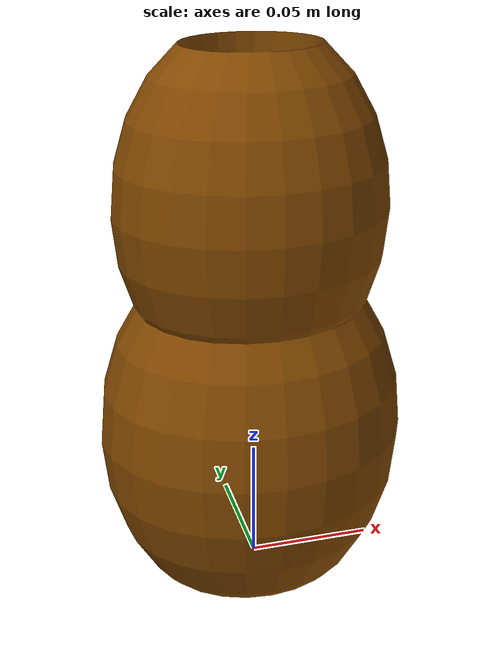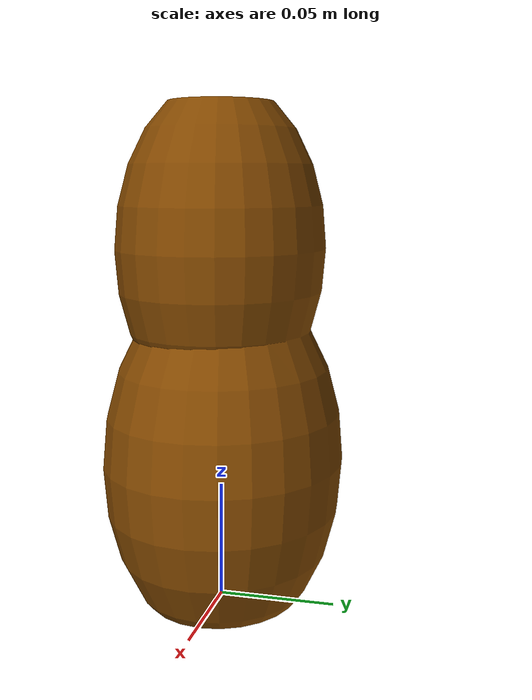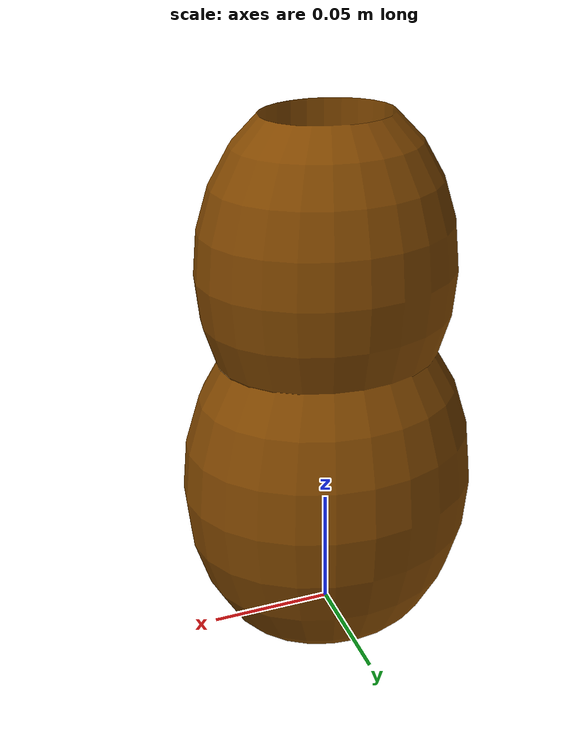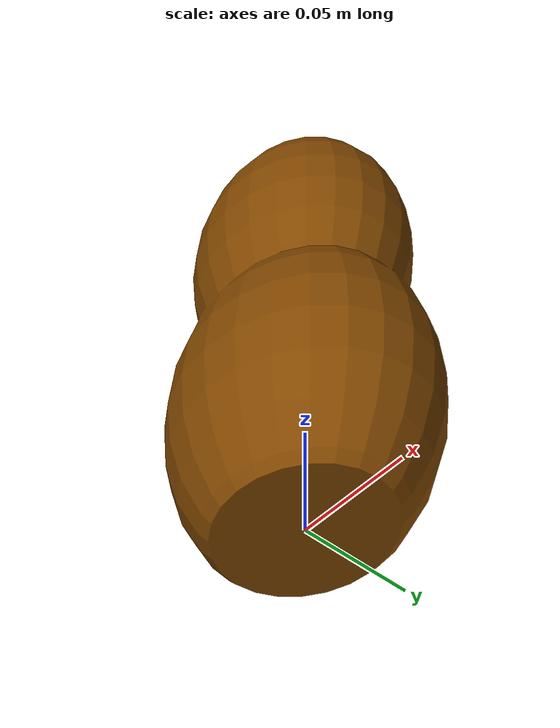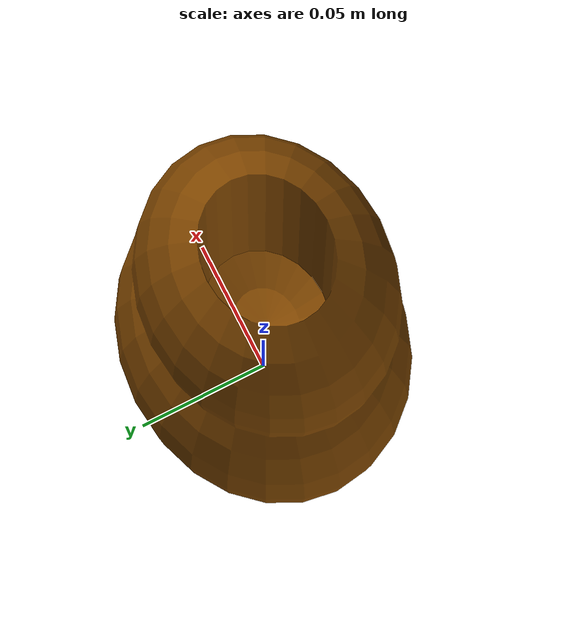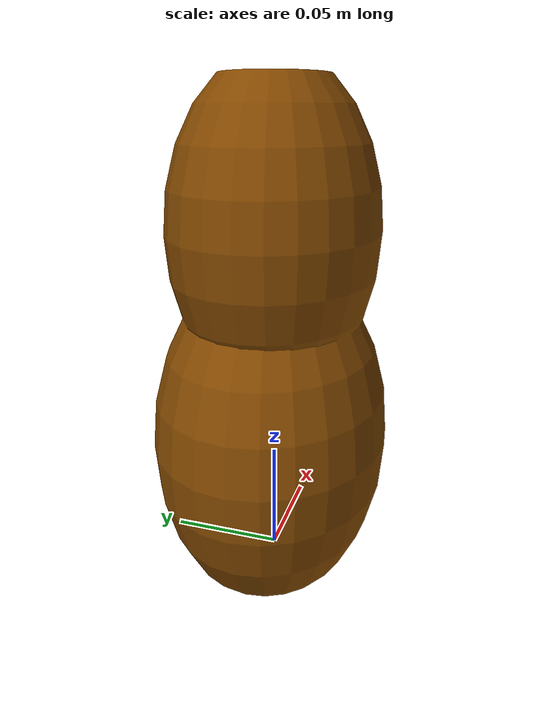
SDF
<?xml version='1.0'?>
<sdf version='1.6'>
  <model name='vase_small'>
    <link name='link_29'>
      <pose frame=''>0 0 0 0 -0 0</pose>
       <visual name='visual'>
        <pose frame=''>0 0 0 0 -0 0</pose>
        <geometry>
          <mesh>
            <uri>model://vase_small/meshes/vase2.dae</uri>
            <scale>1 1 1</scale>
          </mesh>
        </geometry>
     <material>
          <script>
            <uri>model://vase_small/materials/scripts</uri>
            <uri>model://vase_small/materials/textures</uri>
            <name>vase_pattern1</name>
          </script>
        </material>
        <cast_shadows>1</cast_shadows>
        <transparency>0</transparency>
      </visual>
      <collision name='collision'>
        <laser_retro>0</laser_retro>
        <max_contacts>10</max_contacts>
        <pose frame=''>0 0 0 0 -0 0</pose>
        <geometry>
          <mesh>
            <uri>model://vase_small/meshes/vase2.dae</uri>
            <scale>1 1 1</scale>
          </mesh>
        </geometry>
      </collision>
    </link>
    <static>1</static>
    <allow_auto_disable>1</allow_auto_disable>
  </model>
</sdf>
